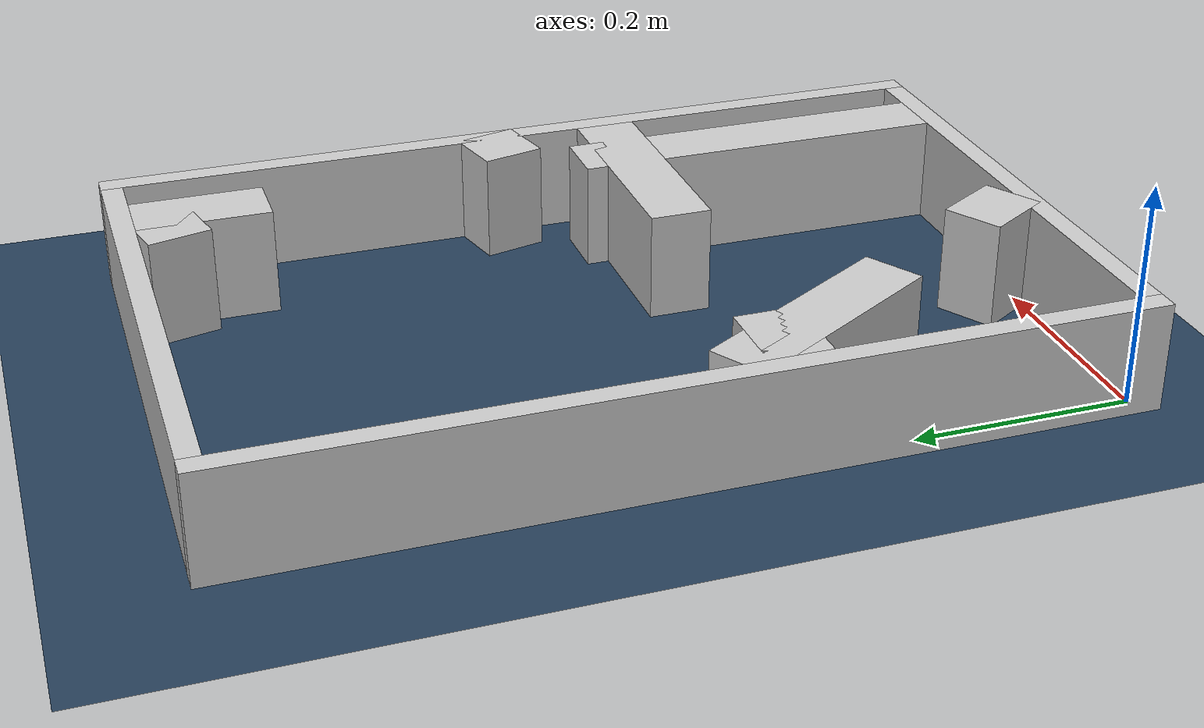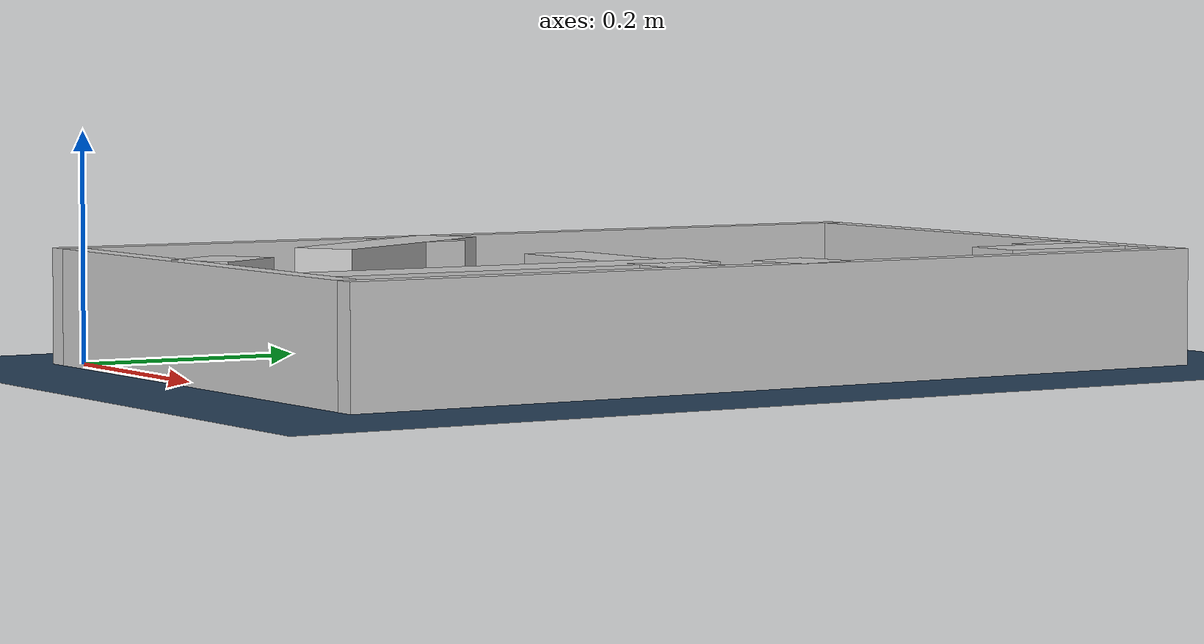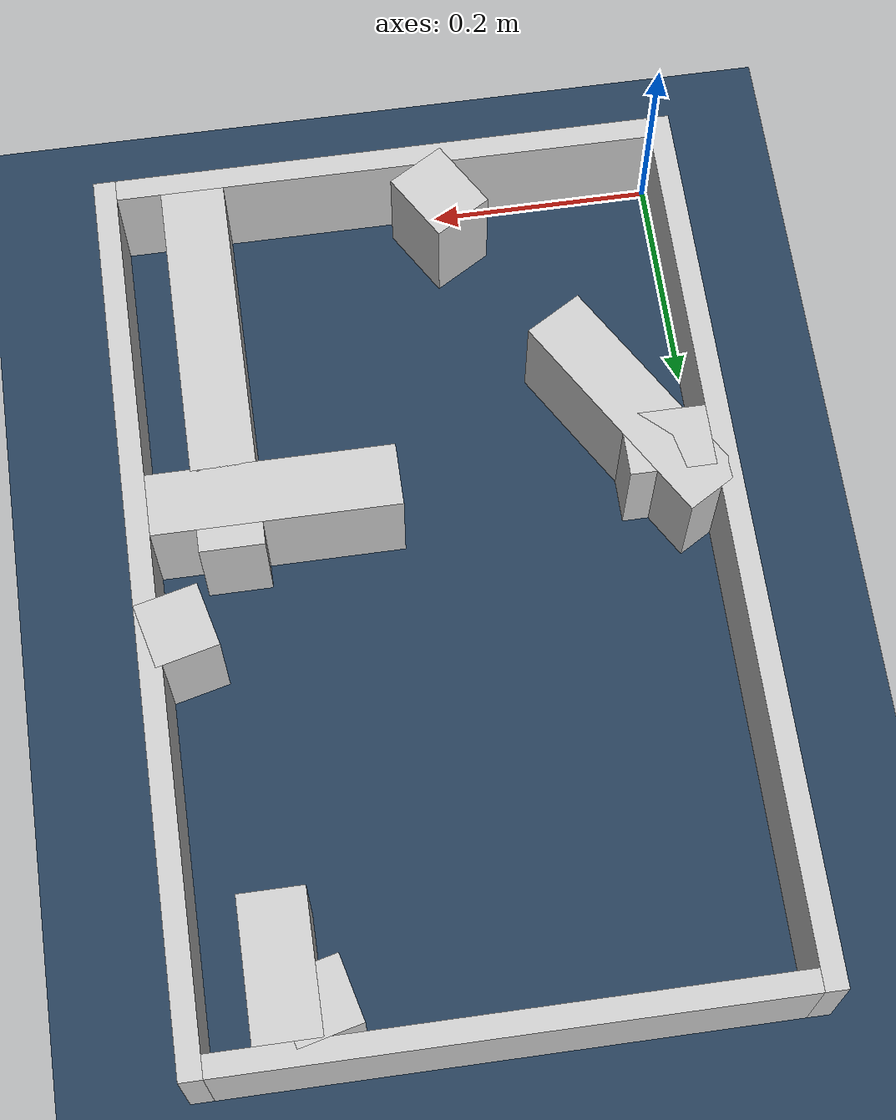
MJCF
<?xml version="1.0" ?>
<mujoco model="generated_real_template">
  <compiler angle="degree"/>
  <option timestep="0.002" integrator="implicitfast" iterations="100" cone="elliptic"/>
  <default>
    <geom density="1"/>
  </default>
  <asset>
    <texture builtin="gradient" height="3072" rgb1="0.3 0.5 0.7" rgb2="0 0 0" type="skybox" width="512"/>
    <texture builtin="checker" height="300" mark="edge" markrgb="0.8 0.8 0.8" name="groundplane" rgb1="0.2 0.3 0.4" rgb2="0.1 0.2 0.3" type="2d" width="300"/>
    <material name="groundplane" reflectance="0.2" texrepeat="5 5" texture="groundplane" texuniform="true"/>
  </asset>
  <worldbody>
    <light dir="0 0 -1" directional="true" pos="0 0 1.5"/>
    <geom name="floor" type="plane" condim="4" friction="0.5 0.005 0.001" material="groundplane" size="0 0 0.05"/>
    <body name="walls">
      <geom name="wall_boundary_left" type="box" condim="4" friction="1.0 0.005 0.0001" rgba="0.8 0.8 0.8 1" pos="-0.010000 0.387500 0.050000" euler="0 0 0.000000" size="0.010000 0.407500 0.050000"/>
      <geom name="wall_boundary_right" type="box" condim="4" friction="1.0 0.005 0.0001" rgba="0.8 0.8 0.8 1" pos="0.500000 0.387500 0.050000" euler="0 0 0.000000" size="0.010000 0.407500 0.050000"/>
      <geom name="wall_boundary_bottom" type="box" condim="4" friction="1.0 0.005 0.0001" rgba="0.8 0.8 0.8 1" pos="0.245000 -0.010000 0.050000" euler="0 0 0.000000" size="0.245000 0.010000 0.050000"/>
      <geom name="wall_boundary_top" type="box" condim="4" friction="1.0 0.005 0.0001" rgba="0.8 0.8 0.8 1" pos="0.245000 0.785000 0.050000" euler="0 0 0.000000" size="0.245000 0.010000 0.050000"/>
      <geom name="wall_inner_1_1" type="box" condim="4" friction="1.0 0.005 0.0001" rgba="0.8 0.8 0.8 1" pos="0.394736 0.746100 0.050000" euler="0 0 -76.227268" size="0.029756 0.028500 0.050000"/>
      <geom name="wall_inner_1_2" type="box" condim="4" friction="1.0 0.005 0.0001" rgba="0.8 0.8 0.8 1" pos="0.475282 0.417500 0.050000" euler="0 0 -76.227268" size="0.029554 0.028500 0.050000"/>
      <geom name="wall_inner_2_1" type="box" condim="4" friction="1.0 0.005 0.0001" rgba="0.8 0.8 0.8 1" pos="0.421878 0.177102 0.050000" euler="0 0 90.000000" size="0.177102 0.028500 0.050000"/>
      <geom name="wall_inner_2_2" type="box" condim="4" friction="1.0 0.005 0.0001" rgba="0.8 0.8 0.8 1" pos="0.421878 0.713776 0.050000" euler="0 0 90.000000" size="0.061224 0.028500 0.050000"/>
      <geom name="wall_inner_3_1" type="box" condim="4" friction="1.0 0.005 0.0001" rgba="0.8 0.8 0.8 1" pos="0.037799 0.304947 0.050000" euler="0 0 0.000000" size="0.037799 0.028500 0.050000"/>
      <geom name="wall_inner_3_2" type="box" condim="4" friction="1.0 0.005 0.0001" rgba="0.8 0.8 0.8 1" pos="0.381012 0.304947 0.050000" euler="0 0 0.000000" size="0.108988 0.028500 0.050000"/>
      <geom name="wall_inner_4_1" type="box" condim="4" friction="1.0 0.005 0.0001" rgba="0.8 0.8 0.8 1" pos="0.060751 0.263314 0.050000" euler="0 0 -59.216535" size="0.109937 0.028500 0.050000"/>
      <geom name="wall_inner_4_2" type="box" condim="4" friction="1.0 0.005 0.0001" rgba="0.8 0.8 0.8 1" pos="0.199610 0.030223 0.050000" euler="0 0 -59.216535" size="0.035180 0.028500 0.050000"/>
    </body>
  </worldbody>
</mujoco>
